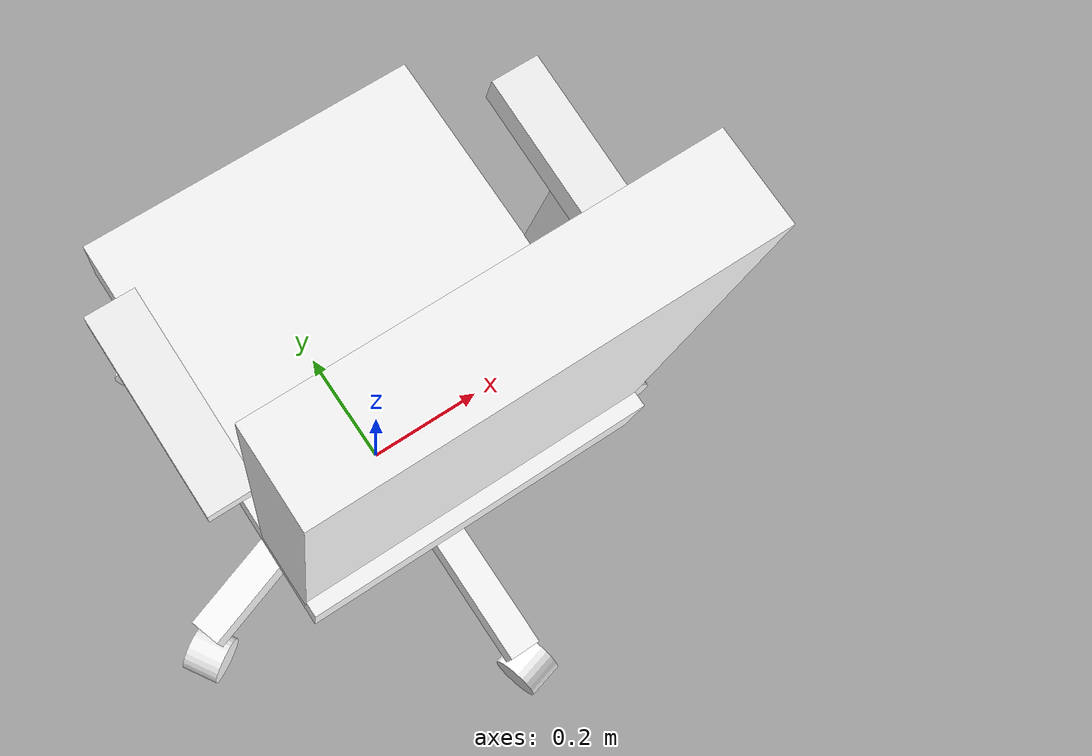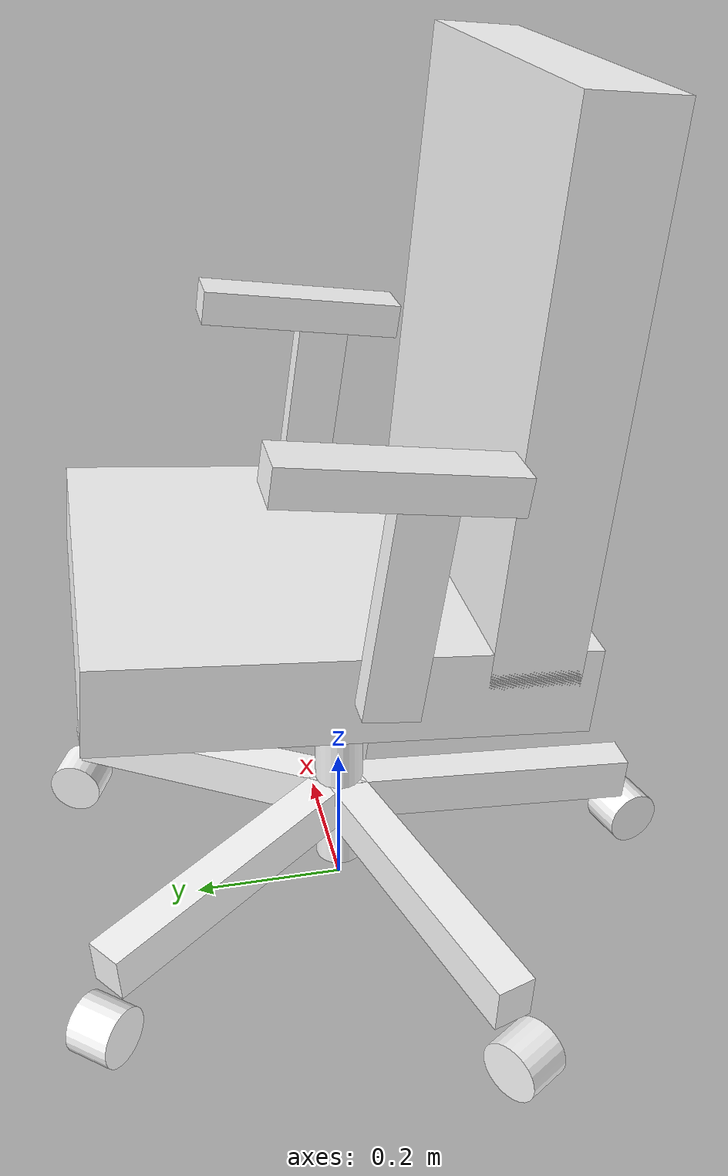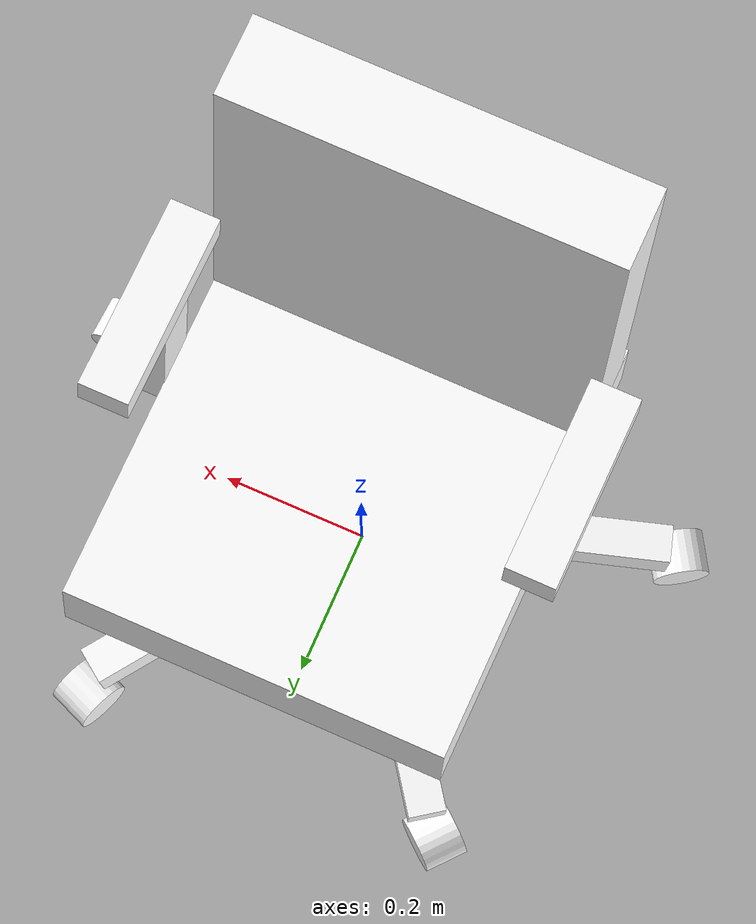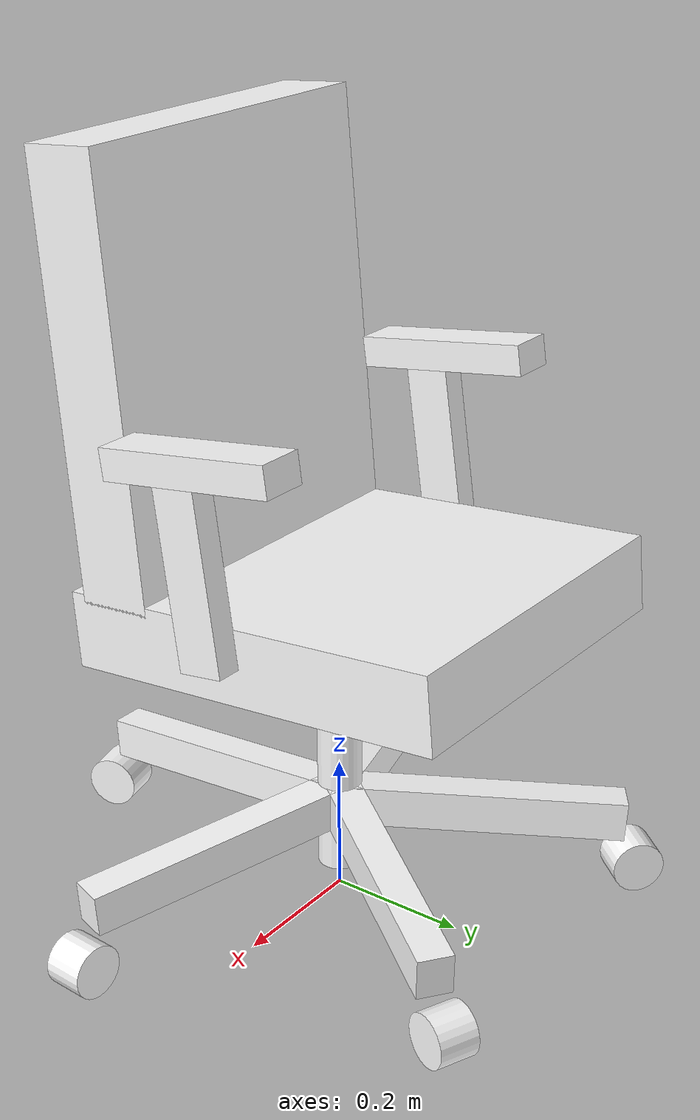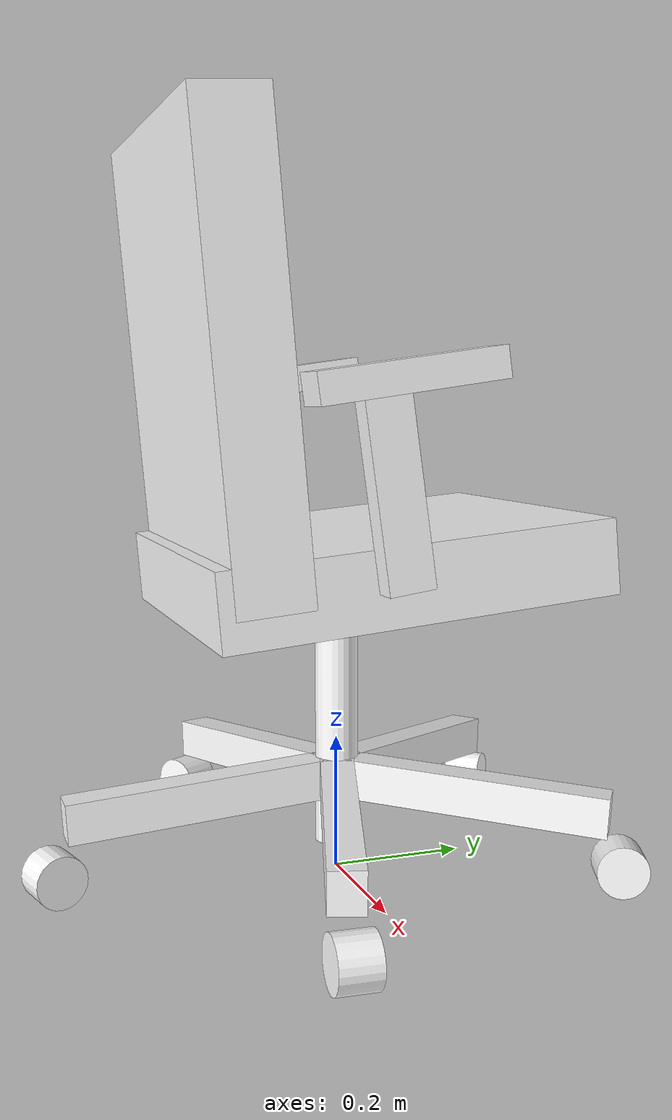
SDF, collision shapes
<?xml version="1.0" encoding="UTF-8"?>
<sdf version="1.6">
    <model name="OfficeChair">
        <static>true</static>
        <link name="base_link">
            <visual name="visual">
                <geometry>
                    <mesh>
                        <uri>model://office_chair/meshes/officechair.dae</uri>
                    </mesh>
                </geometry>
                <material>
                    <diffuse>1.0 1.0 1.0</diffuse>
                    <specular>1.0 1.0 1.0</specular>
                    <pbr>
                        <metal>
                            <albedo_map>model://office_chair/materials/textures/OfficeChair_Albedo.png</albedo_map>
                            <normal_map>model://office_chair/materials/textures/OfficeChair_Normal.png</normal_map>
                            <roughness_map>model://office_chair/materials/textures/OfficeChair_Roughness.png</roughness_map>
                            <metalness_map>model://office_chair/materials/textures/OfficeChair_Metalness.png</metalness_map>
                        </metal>
                    </pbr>
                </material>
            </visual>
            <collision name="Box001">
                <pose>0.0 0.03962 0.46685 0.0872665 0.0 0.0</pose>
                <geometry>
                    <box>
                        <size>0.511249 0.578359 0.108987</size>
                    </box>
                </geometry>
            </collision>
            <collision name="Box002">
                <pose>0.0 -0.200278 0.766385 -1.48353 0.0 0.0</pose>
                <geometry>
                    <box>
                        <size>0.511249 0.665113 0.108987</size>
                    </box>
                </geometry>
            </collision>
            <collision name="Cylinder001">
                <pose>0.0 0.0 0.239577 0.0 0.0 0.0</pose>
                <geometry>
                    <cylinder>
                        <length>0.395591</length>
                        <radius>0.0321281</radius>
                    </cylinder>
                </geometry>
            </collision>
            <collision name="Cylinder002">
                <pose>0.406934 -0.124695 0.037183 1.5708 0.0 -0.0671651</pose>
                <geometry>
                    <cylinder>
                        <length>0.0584031</length>
                        <radius>0.0379998</radius>
                    </cylinder>
                </geometry>
            </collision>
            <collision name="Cylinder003">
                <pose>0.243918 0.348604 0.037183 1.5708 0.0 1.17814</pose>
                <geometry>
                    <cylinder>
                        <length>0.0584031</length>
                        <radius>0.0379998</radius>
                    </cylinder>
                </geometry>
            </collision>
            <collision name="Cylinder004">
                <pose>-0.255977 0.339873 0.037183 1.5708 0.0 2.44229</pose>
                <geometry>
                    <cylinder>
                        <length>0.0584031</length>
                        <radius>0.0379998</radius>
                    </cylinder>
                </geometry>
            </collision>
            <collision name="Cylinder005">
                <pose>-0.40242 -0.13893 0.037183 1.5708 0.0 -2.5742</pose>
                <geometry>
                    <cylinder>
                        <length>0.0584031</length>
                        <radius>0.0379998</radius>
                    </cylinder>
                </geometry>
            </collision>
            <collision name="Cylinder006">
                <pose>0.00739516 -0.425689 0.037183 1.5708 0.0 1.8213</pose>
                <geometry>
                    <cylinder>
                        <length>0.0584031</length>
                        <radius>0.0379998</radius>
                    </cylinder>
                </geometry>
            </collision>
            <collision name="Box003">
                <pose>0.0 -0.208233 0.12911 0.0699253 0.0 0.0</pose>
                <geometry>
                    <box>
                        <size>0.0504429 0.404478 0.0590608</size>
                    </box>
                </geometry>
            </collision>
            <collision name="Box004">
                <pose>-0.198041 -0.0643475 0.12911 0.0699253 0.0 -1.25664</pose>
                <geometry>
                    <box>
                        <size>0.0504429 0.404478 0.0590608</size>
                    </box>
                </geometry>
            </collision>
            <collision name="Box005">
                <pose>-0.122396 0.168464 0.12911 0.0699253 0.0 -2.51327</pose>
                <geometry>
                    <box>
                        <size>0.0504429 0.404478 0.0590608</size>
                    </box>
                </geometry>
            </collision>
            <collision name="Box006">
                <pose>0.122396 0.168464 0.12911 0.0699253 0.0 2.51327</pose>
                <geometry>
                    <box>
                        <size>0.0504429 0.404478 0.0590608</size>
                    </box>
                </geometry>
            </collision>
            <collision name="Box007">
                <pose>0.198041 -0.0643477 0.12911 0.0699253 0.0 1.25664</pose>
                <geometry>
                    <box>
                        <size>0.0504429 0.404478 0.0590608</size>
                    </box>
                </geometry>
            </collision>
            <collision name="Box008">
                <pose>-0.275812 -0.0026205 0.741555 1.5708 0.139626 -1.5708</pose>
                <geometry>
                    <box>
                        <size>0.26452 0.0438992 0.0659291</size>
                    </box>
                </geometry>
            </collision>
            <collision name="Box009">
                <pose>-0.273179 -0.0180064 0.599892 1.5708 0.139626 -1.5708</pose>
                <geometry>
                    <box>
                        <size>0.0661301 0.280955 0.0369203</size>
                    </box>
                </geometry>
            </collision>
            <collision name="Box010">
                <pose>0.275965 -0.00262052 0.741555 1.5708 -0.139626 1.5708</pose>
                <geometry>
                    <box>
                        <size>0.26452 0.0438992 0.0659291</size>
                    </box>
                </geometry>
            </collision>
            <collision name="Box011">
                <pose>0.27346 -0.0180064 0.599892 1.5708 -0.139626 1.5708</pose>
                <geometry>
                    <box>
                        <size>0.0661301 0.280955 0.0369203</size>
                    </box>
                </geometry>
            </collision>
        </link>
  <plugin name="gz::sim::systems::Label" filename="gz-sim-label-system">
    <label>1</label>
  </plugin>
    </model>
</sdf>
